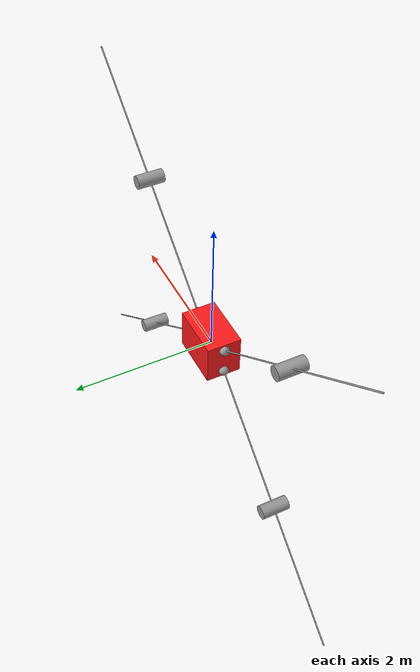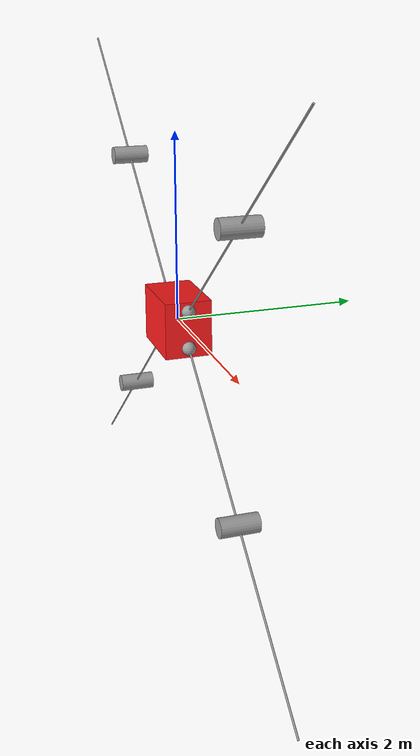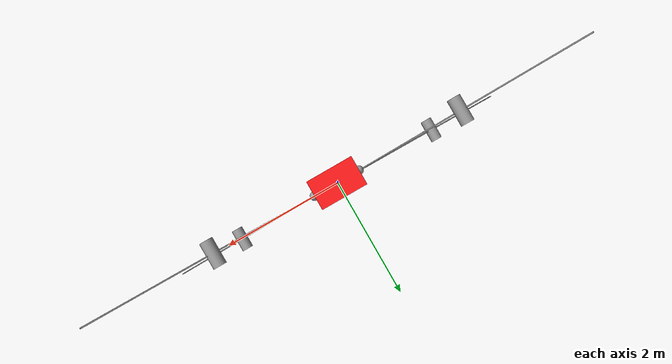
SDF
<?xml version='1.0'?>
<sdf version='1.7'>
  <model name='Wallbot_V3_Robot'>
    <link name='link_0'>
      <inertial>
        <mass>1</mass>
        <inertia>
          <ixx>0.166667</ixx>
          <ixy>0</ixy>
          <ixz>0</ixz>
          <iyy>0.166667</iyy>
          <iyz>0</iyz>
          <izz>0.166667</izz>
        </inertia>
        <pose>0 0 0 0 -0 0</pose>
      </inertial>
      <pose>0.015 0 0.005 0 -0 0</pose>
      <gravity>0</gravity>
      <self_collide>0</self_collide>
      <kinematic>0</kinematic>
      <enable_wind>0</enable_wind>
      <visual name='visual'>
        <pose>0 0 0 0 -0 0</pose>
        <geometry>
          <box>
            <size>0.8 0.5 0.6</size>
          </box>
        </geometry>
        <material>
          <lighting>1</lighting>
          <script>
            <uri>file://media/materials/scripts/gazebo.material</uri>
            <name>Gazebo/Grey</name>
          </script>
          <shader type='pixel'>
            <normal_map>__default__</normal_map>
          </shader>
          <ambient>1 0.1 0.1 1</ambient>
          <diffuse>0.7 0.7 0.7 1</diffuse>
          <specular>0.01 0.01 0.01 1</specular>
          <emissive>0 0 0 1</emissive>
        </material>
        <transparency>0</transparency>
        <cast_shadows>1</cast_shadows>
      </visual>
      <collision name='collision'>
        <laser_retro>0</laser_retro>
        <max_contacts>10</max_contacts>
        <pose>0 0 0 0 -0 0</pose>
        <geometry>
          <box>
            <size>0.8 0.5 0.6</size>
          </box>
        </geometry>
        <surface>
          <friction>
            <ode>
              <mu>1</mu>
              <mu2>1</mu2>
              <fdir1>0 0 0</fdir1>
              <slip1>0</slip1>
              <slip2>0</slip2>
            </ode>
            <torsional>
              <coefficient>1</coefficient>
              <patch_radius>0</patch_radius>
              <surface_radius>0</surface_radius>
              <use_patch_radius>1</use_patch_radius>
              <ode>
                <slip>0</slip>
              </ode>
            </torsional>
          </friction>
          <bounce>
            <restitution_coefficient>0</restitution_coefficient>
            <threshold>1e+06</threshold>
          </bounce>
          <contact>
            <collide_without_contact>0</collide_without_contact>
            <collide_without_contact_bitmask>1</collide_without_contact_bitmask>
            <collide_bitmask>1</collide_bitmask>
            <ode>
              <soft_cfm>0</soft_cfm>
              <soft_erp>0.2</soft_erp>
              <kp>1e+13</kp>
              <kd>1</kd>
              <max_vel>0.01</max_vel>
              <min_depth>0</min_depth>
            </ode>
            <bullet>
              <split_impulse>1</split_impulse>
              <split_impulse_penetration_threshold>-0.01</split_impulse_penetration_threshold>
              <soft_cfm>0</soft_cfm>
              <soft_erp>0.2</soft_erp>
              <kp>1e+13</kp>
              <kd>1</kd>
            </bullet>
          </contact>
        </surface>
      </collision>
    </link>
    <link name='link_0_0'>
      <inertial>
        <mass>1</mass>
        <inertia>
          <ixx>0.145833</ixx>
          <ixy>0</ixy>
          <ixz>0</ixz>
          <iyy>0.145833</iyy>
          <iyz>0</iyz>
          <izz>0.125</izz>
        </inertia>
        <pose>0 0 -2 0 -0 0</pose>
      </inertial>
      <pose>0.415 0 0.205 3.14159 -0.901593 3.14159</pose>
      <gravity>0</gravity>
      <self_collide>0</self_collide>
      <kinematic>0</kinematic>
      <enable_wind>0</enable_wind>
      <visual name='visual'>
        <pose>0 0 -2 0 -0 0</pose>
        <geometry>
          <cylinder>
            <radius>0.01</radius>
            <length>4</length>
          </cylinder>
        </geometry>
        <material>
          <lighting>1</lighting>
          <script>
            <uri>file://media/materials/scripts/gazebo.material</uri>
            <name>Gazebo/Grey</name>
          </script>
          <shader type='pixel'>
            <normal_map>__default__</normal_map>
          </shader>
          <ambient>0.3 0.3 0.3 1</ambient>
          <diffuse>0.7 0.7 0.7 1</diffuse>
          <specular>0.01 0.01 0.01 1</specular>
          <emissive>0 0 0 1</emissive>
        </material>
        <transparency>0</transparency>
        <cast_shadows>1</cast_shadows>
      </visual>
      <collision name='collision'>
        <laser_retro>0</laser_retro>
        <max_contacts>10</max_contacts>
        <pose>0 0 -2 0 -0 0</pose>
        <geometry>
          <cylinder>
            <radius>0.01</radius>
            <length>4</length>
          </cylinder>
        </geometry>
        <surface>
          <friction>
            <ode>
              <mu>1</mu>
              <mu2>1</mu2>
              <fdir1>0 0 0</fdir1>
              <slip1>0</slip1>
              <slip2>0</slip2>
            </ode>
            <torsional>
              <coefficient>1</coefficient>
              <patch_radius>0</patch_radius>
              <surface_radius>0</surface_radius>
              <use_patch_radius>1</use_patch_radius>
              <ode>
                <slip>0</slip>
              </ode>
            </torsional>
          </friction>
          <bounce>
            <restitution_coefficient>0</restitution_coefficient>
            <threshold>1e+06</threshold>
          </bounce>
          <contact>
            <collide_without_contact>0</collide_without_contact>
            <collide_without_contact_bitmask>1</collide_without_contact_bitmask>
            <collide_bitmask>1</collide_bitmask>
            <ode>
              <soft_cfm>0</soft_cfm>
              <soft_erp>0.2</soft_erp>
              <kp>1e+13</kp>
              <kd>1</kd>
              <max_vel>0.01</max_vel>
              <min_depth>0</min_depth>
            </ode>
            <bullet>
              <split_impulse>1</split_impulse>
              <split_impulse_penetration_threshold>-0.01</split_impulse_penetration_threshold>
              <soft_cfm>0</soft_cfm>
              <soft_erp>0.2</soft_erp>
              <kp>1e+13</kp>
              <kd>1</kd>
            </bullet>
          </contact>
        </surface>
      </collision>
    </link>
    <link name='link_0_0_clone'>
      <inertial>
        <mass>1</mass>
        <inertia>
          <ixx>0.145833</ixx>
          <ixy>0</ixy>
          <ixz>0</ixz>
          <iyy>0.145833</iyy>
          <iyz>0</iyz>
          <izz>0.125</izz>
        </inertia>
        <pose>0 0 -2 0 -0 0</pose>
      </inertial>
      <pose>-0.385 0 0.205 -3.14159 0.9 -3.14159</pose>
      <gravity>0</gravity>
      <self_collide>0</self_collide>
      <kinematic>0</kinematic>
      <enable_wind>0</enable_wind>
      <visual name='visual_0'>
        <pose>0 0 -2 0 -0 0</pose>
        <geometry>
          <cylinder>
            <radius>0.01</radius>
            <length>4</length>
          </cylinder>
        </geometry>
        <material>
          <lighting>1</lighting>
          <script>
            <uri>file://media/materials/scripts/gazebo.material</uri>
            <name>Gazebo/Grey</name>
          </script>
          <shader type='pixel'>
            <normal_map>__default__</normal_map>
          </shader>
          <ambient>0.3 0.3 0.3 1</ambient>
          <diffuse>0.7 0.7 0.7 1</diffuse>
          <specular>0.01 0.01 0.01 1</specular>
          <emissive>0 0 0 1</emissive>
        </material>
        <transparency>0</transparency>
        <cast_shadows>1</cast_shadows>
      </visual>
      <collision name='collision'>
        <laser_retro>0</laser_retro>
        <max_contacts>10</max_contacts>
        <pose>0 0 -2 0 -0 0</pose>
        <geometry>
          <cylinder>
            <radius>0.01</radius>
            <length>4</length>
          </cylinder>
        </geometry>
        <surface>
          <friction>
            <ode>
              <mu>1</mu>
              <mu2>1</mu2>
              <fdir1>0 0 0</fdir1>
              <slip1>0</slip1>
              <slip2>0</slip2>
            </ode>
            <torsional>
              <coefficient>1</coefficient>
              <patch_radius>0</patch_radius>
              <surface_radius>0</surface_radius>
              <use_patch_radius>1</use_patch_radius>
              <ode>
                <slip>0</slip>
              </ode>
            </torsional>
          </friction>
          <bounce>
            <restitution_coefficient>0</restitution_coefficient>
            <threshold>1e+06</threshold>
          </bounce>
          <contact>
            <collide_without_contact>0</collide_without_contact>
            <collide_without_contact_bitmask>1</collide_without_contact_bitmask>
            <collide_bitmask>1</collide_bitmask>
            <ode>
              <soft_cfm>0</soft_cfm>
              <soft_erp>0.2</soft_erp>
              <kp>1e+13</kp>
              <kd>1</kd>
              <max_vel>0.01</max_vel>
              <min_depth>0</min_depth>
            </ode>
            <bullet>
              <split_impulse>1</split_impulse>
              <split_impulse_penetration_threshold>-0.01</split_impulse_penetration_threshold>
              <soft_cfm>0</soft_cfm>
              <soft_erp>0.2</soft_erp>
              <kp>1e+13</kp>
              <kd>1</kd>
            </bullet>
          </contact>
        </surface>
      </collision>
    </link>
    <link name='link_0_0_clone_0'>
      <inertial>
        <mass>1</mass>
        <inertia>
          <ixx>0.145833</ixx>
          <ixy>0</ixy>
          <ixz>0</ixz>
          <iyy>0.145833</iyy>
          <iyz>0</iyz>
          <izz>0.125</izz>
        </inertia>
        <pose>0 0 -2 0 -0 0</pose>
      </inertial>
      <pose>0.415 0 -0.195 1.1e-05 -0.9 -5e-06</pose>
      <gravity>0</gravity>
      <self_collide>0</self_collide>
      <kinematic>0</kinematic>
      <enable_wind>0</enable_wind>
      <visual name='visual_0'>
        <pose>0 0 -2 0 -0 0</pose>
        <geometry>
          <cylinder>
            <radius>0.01</radius>
            <length>4</length>
          </cylinder>
        </geometry>
        <material>
          <lighting>1</lighting>
          <script>
            <uri>file://media/materials/scripts/gazebo.material</uri>
            <name>Gazebo/Grey</name>
          </script>
          <shader type='pixel'>
            <normal_map>__default__</normal_map>
          </shader>
          <ambient>0.3 0.3 0.3 1</ambient>
          <diffuse>0.7 0.7 0.7 1</diffuse>
          <specular>0.01 0.01 0.01 1</specular>
          <emissive>0 0 0 1</emissive>
        </material>
        <transparency>0</transparency>
        <cast_shadows>1</cast_shadows>
      </visual>
      <collision name='collision'>
        <laser_retro>0</laser_retro>
        <max_contacts>10</max_contacts>
        <pose>0 0 -2 0 -0 0</pose>
        <geometry>
          <cylinder>
            <radius>0.01</radius>
            <length>4</length>
          </cylinder>
        </geometry>
        <surface>
          <friction>
            <ode>
              <mu>1</mu>
              <mu2>1</mu2>
              <fdir1>0 0 0</fdir1>
              <slip1>0</slip1>
              <slip2>0</slip2>
            </ode>
            <torsional>
              <coefficient>1</coefficient>
              <patch_radius>0</patch_radius>
              <surface_radius>0</surface_radius>
              <use_patch_radius>1</use_patch_radius>
              <ode>
                <slip>0</slip>
              </ode>
            </torsional>
          </friction>
          <bounce>
            <restitution_coefficient>0</restitution_coefficient>
            <threshold>1e+06</threshold>
          </bounce>
          <contact>
            <collide_without_contact>0</collide_without_contact>
            <collide_without_contact_bitmask>1</collide_without_contact_bitmask>
            <collide_bitmask>1</collide_bitmask>
            <ode>
              <soft_cfm>0</soft_cfm>
              <soft_erp>0.2</soft_erp>
              <kp>1e+13</kp>
              <kd>1</kd>
              <max_vel>0.01</max_vel>
              <min_depth>0</min_depth>
            </ode>
            <bullet>
              <split_impulse>1</split_impulse>
              <split_impulse_penetration_threshold>-0.01</split_impulse_penetration_threshold>
              <soft_cfm>0</soft_cfm>
              <soft_erp>0.2</soft_erp>
              <kp>1e+13</kp>
              <kd>1</kd>
            </bullet>
          </contact>
        </surface>
      </collision>
    </link>
    <link name='link_0_0_clone_1'>
      <inertial>
        <mass>1</mass>
        <inertia>
          <ixx>0.145833</ixx>
          <ixy>0</ixy>
          <ixz>0</ixz>
          <iyy>0.145833</iyy>
          <iyz>0</iyz>
          <izz>0.125</izz>
        </inertia>
        <pose>0 0 -2 0 -0 0</pose>
      </inertial>
      <pose>-0.385 0 -0.195 1.1e-05 0.9 -5e-06</pose>
      <gravity>0</gravity>
      <self_collide>0</self_collide>
      <kinematic>0</kinematic>
      <enable_wind>0</enable_wind>
      <visual name='visual_0'>
        <pose>0 0 -2 0 -0 0</pose>
        <geometry>
          <cylinder>
            <radius>0.01</radius>
            <length>4</length>
          </cylinder>
        </geometry>
        <material>
          <lighting>1</lighting>
          <script>
            <uri>file://media/materials/scripts/gazebo.material</uri>
            <name>Gazebo/Grey</name>
          </script>
          <shader type='pixel'>
            <normal_map>__default__</normal_map>
          </shader>
          <ambient>0.3 0.3 0.3 1</ambient>
          <diffuse>0.7 0.7 0.7 1</diffuse>
          <specular>0.01 0.01 0.01 1</specular>
          <emissive>0 0 0 1</emissive>
        </material>
        <transparency>0</transparency>
        <cast_shadows>1</cast_shadows>
      </visual>
      <collision name='collision'>
        <laser_retro>0</laser_retro>
        <max_contacts>10</max_contacts>
        <pose>0 0 -2 0 -0 0</pose>
        <geometry>
          <cylinder>
            <radius>0.01</radius>
            <length>4</length>
          </cylinder>
        </geometry>
        <surface>
          <friction>
            <ode>
              <mu>1</mu>
              <mu2>1</mu2>
              <fdir1>0 0 0</fdir1>
              <slip1>0</slip1>
              <slip2>0</slip2>
            </ode>
            <torsional>
              <coefficient>1</coefficient>
              <patch_radius>0</patch_radius>
              <surface_radius>0</surface_radius>
              <use_patch_radius>1</use_patch_radius>
              <ode>
                <slip>0</slip>
              </ode>
            </torsional>
          </friction>
          <bounce>
            <restitution_coefficient>0</restitution_coefficient>
            <threshold>1e+06</threshold>
          </bounce>
          <contact>
            <collide_without_contact>0</collide_without_contact>
            <collide_without_contact_bitmask>1</collide_without_contact_bitmask>
            <collide_bitmask>1</collide_bitmask>
            <ode>
              <soft_cfm>0</soft_cfm>
              <soft_erp>0.2</soft_erp>
              <kp>1e+13</kp>
              <kd>1</kd>
              <max_vel>0.01</max_vel>
              <min_depth>0</min_depth>
            </ode>
            <bullet>
              <split_impulse>1</split_impulse>
              <split_impulse_penetration_threshold>-0.01</split_impulse_penetration_threshold>
              <soft_cfm>0</soft_cfm>
              <soft_erp>0.2</soft_erp>
              <kp>1e+13</kp>
              <kd>1</kd>
            </bullet>
          </contact>
        </surface>
      </collision>
    </link>
    <link name='link_1'>
      <inertial>
        <mass>1</mass>
        <inertia>
          <ixx>0.1</ixx>
          <ixy>0</ixy>
          <ixz>0</ixz>
          <iyy>0.1</iyy>
          <iyz>0</iyz>
          <izz>0.1</izz>
        </inertia>
        <pose>0 0 0 0 -0 0</pose>
      </inertial>
      <pose>-0.385 0 0.205 0 -0 0</pose>
      <gravity>0</gravity>
      <self_collide>0</self_collide>
      <kinematic>0</kinematic>
      <enable_wind>0</enable_wind>
      <visual name='visual'>
        <pose>0 0 0 0 -0 0</pose>
        <geometry>
          <sphere>
            <radius>0.075</radius>
          </sphere>
        </geometry>
        <material>
          <lighting>1</lighting>
          <script>
            <uri>file://media/materials/scripts/gazebo.material</uri>
            <name>Gazebo/Grey</name>
          </script>
          <shader type='pixel'>
            <normal_map>__default__</normal_map>
          </shader>
          <ambient>0.3 0.3 0.3 1</ambient>
          <diffuse>0.7 0.7 0.7 1</diffuse>
          <specular>0.01 0.01 0.01 1</specular>
          <emissive>0 0 0 1</emissive>
        </material>
        <transparency>0</transparency>
        <cast_shadows>1</cast_shadows>
      </visual>
      <collision name='collision'>
        <laser_retro>0</laser_retro>
        <max_contacts>10</max_contacts>
        <pose>0 0 0 0 -0 0</pose>
        <geometry>
          <sphere>
            <radius>0.075</radius>
          </sphere>
        </geometry>
        <surface>
          <friction>
            <ode>
              <mu>1</mu>
              <mu2>1</mu2>
              <fdir1>0 0 0</fdir1>
              <slip1>0</slip1>
              <slip2>0</slip2>
            </ode>
            <torsional>
              <coefficient>1</coefficient>
              <patch_radius>0</patch_radius>
              <surface_radius>0</surface_radius>
              <use_patch_radius>1</use_patch_radius>
              <ode>
                <slip>0</slip>
              </ode>
            </torsional>
          </friction>
          <bounce>
            <restitution_coefficient>0</restitution_coefficient>
            <threshold>1e+06</threshold>
          </bounce>
          <contact>
            <collide_without_contact>0</collide_without_contact>
            <collide_without_contact_bitmask>1</collide_without_contact_bitmask>
            <collide_bitmask>1</collide_bitmask>
            <ode>
              <soft_cfm>0</soft_cfm>
              <soft_erp>0.2</soft_erp>
              <kp>1e+13</kp>
              <kd>1</kd>
              <max_vel>0.01</max_vel>
              <min_depth>0</min_depth>
            </ode>
            <bullet>
              <split_impulse>1</split_impulse>
              <split_impulse_penetration_threshold>-0.01</split_impulse_penetration_threshold>
              <soft_cfm>0</soft_cfm>
              <soft_erp>0.2</soft_erp>
              <kp>1e+13</kp>
              <kd>1</kd>
            </bullet>
          </contact>
        </surface>
      </collision>
    </link>
    <link name='link_1_0'>
      <inertial>
        <mass>1</mass>
        <inertia>
          <ixx>0.1</ixx>
          <ixy>0</ixy>
          <ixz>0</ixz>
          <iyy>0.1</iyy>
          <iyz>0</iyz>
          <izz>0.1</izz>
        </inertia>
        <pose>0 0 0 0 -0 0</pose>
      </inertial>
      <pose>-1.95165 1e-06 1.44822 0 -0 0</pose>
      <gravity>0</gravity>
      <self_collide>0</self_collide>
      <kinematic>0</kinematic>
      <enable_wind>0</enable_wind>
      <visual name='visual'>
        <pose>0 0 0 0 -0 0</pose>
        <geometry>
          <sphere>
            <radius>0.01</radius>
          </sphere>
        </geometry>
        <material>
          <lighting>1</lighting>
          <script>
            <uri>file://media/materials/scripts/gazebo.material</uri>
            <name>Gazebo/Grey</name>
          </script>
          <shader type='pixel'>
            <normal_map>__default__</normal_map>
          </shader>
          <ambient>0.3 0.3 0.3 1</ambient>
          <diffuse>0.7 0.7 0.7 1</diffuse>
          <specular>0.01 0.01 0.01 1</specular>
          <emissive>0 0 0 1</emissive>
        </material>
        <transparency>0</transparency>
        <cast_shadows>1</cast_shadows>
      </visual>
      <collision name='collision'>
        <laser_retro>0</laser_retro>
        <max_contacts>10</max_contacts>
        <pose>0 0 0 0 -0 0</pose>
        <geometry>
          <sphere>
            <radius>0.01</radius>
          </sphere>
        </geometry>
        <surface>
          <friction>
            <ode>
              <mu>1</mu>
              <mu2>1</mu2>
              <fdir1>0 0 0</fdir1>
              <slip1>0</slip1>
              <slip2>0</slip2>
            </ode>
            <torsional>
              <coefficient>1</coefficient>
              <patch_radius>0</patch_radius>
              <surface_radius>0</surface_radius>
              <use_patch_radius>1</use_patch_radius>
              <ode>
                <slip>0</slip>
              </ode>
            </torsional>
          </friction>
          <bounce>
            <restitution_coefficient>0</restitution_coefficient>
            <threshold>1e+06</threshold>
          </bounce>
          <contact>
            <collide_without_contact>0</collide_without_contact>
            <collide_without_contact_bitmask>1</collide_without_contact_bitmask>
            <collide_bitmask>1</collide_bitmask>
            <ode>
              <soft_cfm>0</soft_cfm>
              <soft_erp>0.2</soft_erp>
              <kp>1e+13</kp>
              <kd>1</kd>
              <max_vel>0.01</max_vel>
              <min_depth>0</min_depth>
            </ode>
            <bullet>
              <split_impulse>1</split_impulse>
              <split_impulse_penetration_threshold>-0.01</split_impulse_penetration_threshold>
              <soft_cfm>0</soft_cfm>
              <soft_erp>0.2</soft_erp>
              <kp>1e+13</kp>
              <kd>1</kd>
            </bullet>
          </contact>
        </surface>
      </collision>
    </link>
    <link name='link_1_0_clone'>
      <inertial>
        <mass>1</mass>
        <inertia>
          <ixx>0.1</ixx>
          <ixy>0</ixy>
          <ixz>0</ixz>
          <iyy>0.1</iyy>
          <iyz>0</iyz>
          <izz>0.1</izz>
        </inertia>
        <pose>0 0 0 0 -0 0</pose>
      </inertial>
      <pose>1.98363 -1e-05 1.44572 0 -0 0</pose>
      <gravity>0</gravity>
      <self_collide>0</self_collide>
      <kinematic>0</kinematic>
      <enable_wind>0</enable_wind>
      <visual name='visual'>
        <pose>0 0 0 0 -0 0</pose>
        <geometry>
          <sphere>
            <radius>0.01</radius>
          </sphere>
        </geometry>
        <material>
          <lighting>1</lighting>
          <script>
            <uri>file://media/materials/scripts/gazebo.material</uri>
            <name>Gazebo/Grey</name>
          </script>
          <shader type='pixel'>
            <normal_map>__default__</normal_map>
          </shader>
          <ambient>0.3 0.3 0.3 1</ambient>
          <diffuse>0.7 0.7 0.7 1</diffuse>
          <specular>0.01 0.01 0.01 1</specular>
          <emissive>0 0 0 1</emissive>
        </material>
        <transparency>0</transparency>
        <cast_shadows>1</cast_shadows>
      </visual>
      <collision name='collision'>
        <laser_retro>0</laser_retro>
        <max_contacts>10</max_contacts>
        <pose>0 0 0 0 -0 0</pose>
        <geometry>
          <sphere>
            <radius>0.01</radius>
          </sphere>
        </geometry>
        <surface>
          <friction>
            <ode>
              <mu>1</mu>
              <mu2>1</mu2>
              <fdir1>0 0 0</fdir1>
              <slip1>0</slip1>
              <slip2>0</slip2>
            </ode>
            <torsional>
              <coefficient>1</coefficient>
              <patch_radius>0</patch_radius>
              <surface_radius>0</surface_radius>
              <use_patch_radius>1</use_patch_radius>
              <ode>
                <slip>0</slip>
              </ode>
            </torsional>
          </friction>
          <bounce>
            <restitution_coefficient>0</restitution_coefficient>
            <threshold>1e+06</threshold>
          </bounce>
          <contact>
            <collide_without_contact>0</collide_without_contact>
            <collide_without_contact_bitmask>1</collide_without_contact_bitmask>
            <collide_bitmask>1</collide_bitmask>
            <ode>
              <soft_cfm>0</soft_cfm>
              <soft_erp>0.2</soft_erp>
              <kp>1e+13</kp>
              <kd>1</kd>
              <max_vel>0.01</max_vel>
              <min_depth>0</min_depth>
            </ode>
            <bullet>
              <split_impulse>1</split_impulse>
              <split_impulse_penetration_threshold>-0.01</split_impulse_penetration_threshold>
              <soft_cfm>0</soft_cfm>
              <soft_erp>0.2</soft_erp>
              <kp>1e+13</kp>
              <kd>1</kd>
            </bullet>
          </contact>
        </surface>
      </collision>
    </link>
    <link name='link_1_0_clone_0'>
      <inertial>
        <mass>1</mass>
        <inertia>
          <ixx>0.1</ixx>
          <ixy>0</ixy>
          <ixz>0</ixz>
          <iyy>0.1</iyy>
          <iyz>0</iyz>
          <izz>0.1</izz>
        </inertia>
        <pose>0 0 0 0 -0 0</pose>
      </inertial>
      <pose>1.98165 1.4e-05 -1.43822 1.1e-05 -0.9 -5e-06</pose>
      <gravity>0</gravity>
      <self_collide>0</self_collide>
      <kinematic>0</kinematic>
      <enable_wind>0</enable_wind>
      <visual name='visual'>
        <pose>0 0 0 0 -0 0</pose>
        <geometry>
          <sphere>
            <radius>0.01</radius>
          </sphere>
        </geometry>
        <material>
          <lighting>1</lighting>
          <script>
            <uri>file://media/materials/scripts/gazebo.material</uri>
            <name>Gazebo/Grey</name>
          </script>
          <shader type='pixel'>
            <normal_map>__default__</normal_map>
          </shader>
          <ambient>0.3 0.3 0.3 1</ambient>
          <diffuse>0.7 0.7 0.7 1</diffuse>
          <specular>0.01 0.01 0.01 1</specular>
          <emissive>0 0 0 1</emissive>
        </material>
        <transparency>0</transparency>
        <cast_shadows>1</cast_shadows>
      </visual>
      <collision name='collision'>
        <laser_retro>0</laser_retro>
        <max_contacts>10</max_contacts>
        <pose>0 0 0 0 -0 0</pose>
        <geometry>
          <sphere>
            <radius>0.01</radius>
          </sphere>
        </geometry>
        <surface>
          <friction>
            <ode>
              <mu>1</mu>
              <mu2>1</mu2>
              <fdir1>0 0 0</fdir1>
              <slip1>0</slip1>
              <slip2>0</slip2>
            </ode>
            <torsional>
              <coefficient>1</coefficient>
              <patch_radius>0</patch_radius>
              <surface_radius>0</surface_radius>
              <use_patch_radius>1</use_patch_radius>
              <ode>
                <slip>0</slip>
              </ode>
            </torsional>
          </friction>
          <bounce>
            <restitution_coefficient>0</restitution_coefficient>
            <threshold>1e+06</threshold>
          </bounce>
          <contact>
            <collide_without_contact>0</collide_without_contact>
            <collide_without_contact_bitmask>1</collide_without_contact_bitmask>
            <collide_bitmask>1</collide_bitmask>
            <ode>
              <soft_cfm>0</soft_cfm>
              <soft_erp>0.2</soft_erp>
              <kp>1e+13</kp>
              <kd>1</kd>
              <max_vel>0.01</max_vel>
              <min_depth>0</min_depth>
            </ode>
            <bullet>
              <split_impulse>1</split_impulse>
              <split_impulse_penetration_threshold>-0.01</split_impulse_penetration_threshold>
              <soft_cfm>0</soft_cfm>
              <soft_erp>0.2</soft_erp>
              <kp>1e+13</kp>
              <kd>1</kd>
            </bullet>
          </contact>
        </surface>
      </collision>
    </link>
    <link name='link_1_0_clone_1'>
      <inertial>
        <mass>1</mass>
        <inertia>
          <ixx>0.1</ixx>
          <ixy>0</ixy>
          <ixz>0</ixz>
          <iyy>0.1</iyy>
          <iyz>0</iyz>
          <izz>0.1</izz>
        </inertia>
        <pose>0 0 0 0 -0 0</pose>
      </inertial>
      <pose>-1.95165 3e-05 -1.43822 1.1e-05 0.9 -5e-06</pose>
      <gravity>0</gravity>
      <self_collide>0</self_collide>
      <kinematic>0</kinematic>
      <enable_wind>0</enable_wind>
      <visual name='visual'>
        <pose>0 0 0 0 -0 0</pose>
        <geometry>
          <sphere>
            <radius>0.01</radius>
          </sphere>
        </geometry>
        <material>
          <lighting>1</lighting>
          <script>
            <uri>file://media/materials/scripts/gazebo.material</uri>
            <name>Gazebo/Grey</name>
          </script>
          <shader type='pixel'>
            <normal_map>__default__</normal_map>
          </shader>
          <ambient>0.3 0.3 0.3 1</ambient>
          <diffuse>0.7 0.7 0.7 1</diffuse>
          <specular>0.01 0.01 0.01 1</specular>
          <emissive>0 0 0 1</emissive>
        </material>
        <transparency>0</transparency>
        <cast_shadows>1</cast_shadows>
      </visual>
      <collision name='collision'>
        <laser_retro>0</laser_retro>
        <max_contacts>10</max_contacts>
        <pose>0 0 0 0 -0 0</pose>
        <geometry>
          <sphere>
            <radius>0.01</radius>
          </sphere>
        </geometry>
        <surface>
          <friction>
            <ode>
              <mu>1</mu>
              <mu2>1</mu2>
              <fdir1>0 0 0</fdir1>
              <slip1>0</slip1>
              <slip2>0</slip2>
            </ode>
            <torsional>
              <coefficient>1</coefficient>
              <patch_radius>0</patch_radius>
              <surface_radius>0</surface_radius>
              <use_patch_radius>1</use_patch_radius>
              <ode>
                <slip>0</slip>
              </ode>
            </torsional>
          </friction>
          <bounce>
            <restitution_coefficient>0</restitution_coefficient>
            <threshold>1e+06</threshold>
          </bounce>
          <contact>
            <collide_without_contact>0</collide_without_contact>
            <collide_without_contact_bitmask>1</collide_without_contact_bitmask>
            <collide_bitmask>1</collide_bitmask>
            <ode>
              <soft_cfm>0</soft_cfm>
              <soft_erp>0.2</soft_erp>
              <kp>1e+13</kp>
              <kd>1</kd>
              <max_vel>0.01</max_vel>
              <min_depth>0</min_depth>
            </ode>
            <bullet>
              <split_impulse>1</split_impulse>
              <split_impulse_penetration_threshold>-0.01</split_impulse_penetration_threshold>
              <soft_cfm>0</soft_cfm>
              <soft_erp>0.2</soft_erp>
              <kp>1e+13</kp>
              <kd>1</kd>
            </bullet>
          </contact>
        </surface>
      </collision>
    </link>
    <link name='link_1_clone'>
      <inertial>
        <mass>1</mass>
        <inertia>
          <ixx>0.1</ixx>
          <ixy>0</ixy>
          <ixz>0</ixz>
          <iyy>0.1</iyy>
          <iyz>0</iyz>
          <izz>0.1</izz>
        </inertia>
        <pose>0 0 0 0 -0 0</pose>
      </inertial>
      <pose>0.415 0 0.205 0 -0 0</pose>
      <gravity>0</gravity>
      <self_collide>0</self_collide>
      <kinematic>0</kinematic>
      <enable_wind>0</enable_wind>
      <visual name='visual'>
        <pose>0 0 0 0 -0 0</pose>
        <geometry>
          <sphere>
            <radius>0.075</radius>
          </sphere>
        </geometry>
        <material>
          <lighting>1</lighting>
          <script>
            <uri>file://media/materials/scripts/gazebo.material</uri>
            <name>Gazebo/Grey</name>
          </script>
          <shader type='pixel'>
            <normal_map>__default__</normal_map>
          </shader>
          <ambient>0.3 0.3 0.3 1</ambient>
          <diffuse>0.7 0.7 0.7 1</diffuse>
          <specular>0.01 0.01 0.01 1</specular>
          <emissive>0 0 0 1</emissive>
        </material>
        <transparency>0</transparency>
        <cast_shadows>1</cast_shadows>
      </visual>
      <collision name='collision'>
        <laser_retro>0</laser_retro>
        <max_contacts>10</max_contacts>
        <pose>0 0 0 0 -0 0</pose>
        <geometry>
          <sphere>
            <radius>0.075</radius>
          </sphere>
        </geometry>
        <surface>
          <friction>
            <ode>
              <mu>1</mu>
              <mu2>1</mu2>
              <fdir1>0 0 0</fdir1>
              <slip1>0</slip1>
              <slip2>0</slip2>
            </ode>
            <torsional>
              <coefficient>1</coefficient>
              <patch_radius>0</patch_radius>
              <surface_radius>0</surface_radius>
              <use_patch_radius>1</use_patch_radius>
              <ode>
                <slip>0</slip>
              </ode>
            </torsional>
          </friction>
          <bounce>
            <restitution_coefficient>0</restitution_coefficient>
            <threshold>1e+06</threshold>
          </bounce>
          <contact>
            <collide_without_contact>0</collide_without_contact>
            <collide_without_contact_bitmask>1</collide_without_contact_bitmask>
            <collide_bitmask>1</collide_bitmask>
            <ode>
              <soft_cfm>0</soft_cfm>
              <soft_erp>0.2</soft_erp>
              <kp>1e+13</kp>
              <kd>1</kd>
              <max_vel>0.01</max_vel>
              <min_depth>0</min_depth>
            </ode>
            <bullet>
              <split_impulse>1</split_impulse>
              <split_impulse_penetration_threshold>-0.01</split_impulse_penetration_threshold>
              <soft_cfm>0</soft_cfm>
              <soft_erp>0.2</soft_erp>
              <kp>1e+13</kp>
              <kd>1</kd>
            </bullet>
          </contact>
        </surface>
      </collision>
    </link>
    <link name='link_1_clone_0'>
      <inertial>
        <mass>1</mass>
        <inertia>
          <ixx>0.1</ixx>
          <ixy>0</ixy>
          <ixz>0</ixz>
          <iyy>0.1</iyy>
          <iyz>0</iyz>
          <izz>0.1</izz>
        </inertia>
        <pose>0 0 0 0 -0 0</pose>
      </inertial>
      <pose>0.415 0 -0.195 0 -0 0</pose>
      <gravity>0</gravity>
      <self_collide>0</self_collide>
      <kinematic>0</kinematic>
      <enable_wind>0</enable_wind>
      <visual name='visual'>
        <pose>0 0 0 0 -0 0</pose>
        <geometry>
          <sphere>
            <radius>0.075</radius>
          </sphere>
        </geometry>
        <material>
          <lighting>1</lighting>
          <script>
            <uri>file://media/materials/scripts/gazebo.material</uri>
            <name>Gazebo/Grey</name>
          </script>
          <shader type='pixel'>
            <normal_map>__default__</normal_map>
          </shader>
          <ambient>0.3 0.3 0.3 1</ambient>
          <diffuse>0.7 0.7 0.7 1</diffuse>
          <specular>0.01 0.01 0.01 1</specular>
          <emissive>0 0 0 1</emissive>
        </material>
        <transparency>0</transparency>
        <cast_shadows>1</cast_shadows>
      </visual>
      <collision name='collision'>
        <laser_retro>0</laser_retro>
        <max_contacts>10</max_contacts>
        <pose>0 0 0 0 -0 0</pose>
        <geometry>
          <sphere>
            <radius>0.075</radius>
          </sphere>
        </geometry>
        <surface>
          <friction>
            <ode>
              <mu>1</mu>
              <mu2>1</mu2>
              <fdir1>0 0 0</fdir1>
              <slip1>0</slip1>
              <slip2>0</slip2>
            </ode>
            <torsional>
              <coefficient>1</coefficient>
              <patch_radius>0</patch_radius>
              <surface_radius>0</surface_radius>
              <use_patch_radius>1</use_patch_radius>
              <ode>
                <slip>0</slip>
              </ode>
            </torsional>
          </friction>
          <bounce>
            <restitution_coefficient>0</restitution_coefficient>
            <threshold>1e+06</threshold>
          </bounce>
          <contact>
            <collide_without_contact>0</collide_without_contact>
            <collide_without_contact_bitmask>1</collide_without_contact_bitmask>
            <collide_bitmask>1</collide_bitmask>
            <ode>
              <soft_cfm>0</soft_cfm>
              <soft_erp>0.2</soft_erp>
              <kp>1e+13</kp>
              <kd>1</kd>
              <max_vel>0.01</max_vel>
              <min_depth>0</min_depth>
            </ode>
            <bullet>
              <split_impulse>1</split_impulse>
              <split_impulse_penetration_threshold>-0.01</split_impulse_penetration_threshold>
              <soft_cfm>0</soft_cfm>
              <soft_erp>0.2</soft_erp>
              <kp>1e+13</kp>
              <kd>1</kd>
            </bullet>
          </contact>
        </surface>
      </collision>
    </link>
    <link name='link_1_clone_1'>
      <inertial>
        <mass>1</mass>
        <inertia>
          <ixx>0.1</ixx>
          <ixy>0</ixy>
          <ixz>0</ixz>
          <iyy>0.1</iyy>
          <iyz>0</iyz>
          <izz>0.1</izz>
        </inertia>
        <pose>0 0 0 0 -0 0</pose>
      </inertial>
      <pose>-0.385 0 -0.195 0 -0 0</pose>
      <gravity>0</gravity>
      <self_collide>0</self_collide>
      <kinematic>0</kinematic>
      <enable_wind>0</enable_wind>
      <visual name='visual'>
        <pose>0 0 0 0 -0 0</pose>
        <geometry>
          <sphere>
            <radius>0.075</radius>
          </sphere>
        </geometry>
        <material>
          <lighting>1</lighting>
          <script>
            <uri>file://media/materials/scripts/gazebo.material</uri>
            <name>Gazebo/Grey</name>
          </script>
          <shader type='pixel'>
            <normal_map>__default__</normal_map>
          </shader>
          <ambient>0.3 0.3 0.3 1</ambient>
          <diffuse>0.7 0.7 0.7 1</diffuse>
          <specular>0.01 0.01 0.01 1</specular>
          <emissive>0 0 0 1</emissive>
        </material>
        <transparency>0</transparency>
        <cast_shadows>1</cast_shadows>
      </visual>
      <collision name='collision'>
        <laser_retro>0</laser_retro>
        <max_contacts>10</max_contacts>
        <pose>0 0 0 0 -0 0</pose>
        <geometry>
          <sphere>
            <radius>0.075</radius>
          </sphere>
        </geometry>
        <surface>
          <friction>
            <ode>
              <mu>1</mu>
              <mu2>1</mu2>
              <fdir1>0 0 0</fdir1>
              <slip1>0</slip1>
              <slip2>0</slip2>
            </ode>
            <torsional>
              <coefficient>1</coefficient>
              <patch_radius>0</patch_radius>
              <surface_radius>0</surface_radius>
              <use_patch_radius>1</use_patch_radius>
              <ode>
                <slip>0</slip>
              </ode>
            </torsional>
          </friction>
          <bounce>
            <restitution_coefficient>0</restitution_coefficient>
            <threshold>1e+06</threshold>
          </bounce>
          <contact>
            <collide_without_contact>0</collide_without_contact>
            <collide_without_contact_bitmask>1</collide_without_contact_bitmask>
            <collide_bitmask>1</collide_bitmask>
            <ode>
              <soft_cfm>0</soft_cfm>
              <soft_erp>0.2</soft_erp>
              <kp>1e+13</kp>
              <kd>1</kd>
              <max_vel>0.01</max_vel>
              <min_depth>0</min_depth>
            </ode>
            <bullet>
              <split_impulse>1</split_impulse>
              <split_impulse_penetration_threshold>-0.01</split_impulse_penetration_threshold>
              <soft_cfm>0</soft_cfm>
              <soft_erp>0.2</soft_erp>
              <kp>1e+13</kp>
              <kd>1</kd>
            </bullet>
          </contact>
        </surface>
      </collision>
    </link>
    <link name='link_3'>
      <inertial>
        <mass>1</mass>
        <inertia>
          <ixx>0.145833</ixx>
          <ixy>0</ixy>
          <ixz>0</ixz>
          <iyy>0.145833</iyy>
          <iyz>0</iyz>
          <izz>0.125</izz>
        </inertia>
        <pose>0 0 0 0 -0 0</pose>
      </inertial>
      <pose>-1.95165 1e-06 1.44822 0 -0 0</pose>
      <gravity>0</gravity>
      <self_collide>0</self_collide>
      <static>1</static>
      <enable_wind>0</enable_wind>
      <visual name='visual'>
        <pose>0 0 0 1.57 -0 0</pose>
        <geometry>
          <cylinder>
            <radius>0.1</radius>
            <length>0.4</length>
          </cylinder>
        </geometry>
        <material>
          <lighting>1</lighting>
          <script>
            <uri>file://media/materials/scripts/gazebo.material</uri>
            <name>Gazebo/Grey</name>
          </script>
          <shader type='pixel'>
            <normal_map>__default__</normal_map>
          </shader>
          <ambient>0.3 0.3 0.3 1</ambient>
          <diffuse>0.7 0.7 0.7 1</diffuse>
          <specular>0.01 0.01 0.01 1</specular>
          <emissive>0 0 0 1</emissive>
        </material>
        <transparency>0</transparency>
        <cast_shadows>1</cast_shadows>
      </visual>
      <collision name='collision'>
        <laser_retro>0</laser_retro>
        <max_contacts>10</max_contacts>
        <pose>0 0 0 1.57 -0 0</pose>
        <geometry>
          <cylinder>
            <radius>0.1</radius>
            <length>0.4</length>
          </cylinder>
        </geometry>
        <surface>
          <friction>
            <ode>
              <mu>1</mu>
              <mu2>1</mu2>
              <fdir1>0 0 0</fdir1>
              <slip1>0</slip1>
              <slip2>0</slip2>
            </ode>
            <torsional>
              <coefficient>1</coefficient>
              <patch_radius>0</patch_radius>
              <surface_radius>0</surface_radius>
              <use_patch_radius>1</use_patch_radius>
              <ode>
                <slip>0</slip>
              </ode>
            </torsional>
          </friction>
          <bounce>
            <restitution_coefficient>0</restitution_coefficient>
            <threshold>1e+06</threshold>
          </bounce>
          <contact>
            <collide_without_contact>0</collide_without_contact>
            <collide_without_contact_bitmask>1</collide_without_contact_bitmask>
            <collide_bitmask>1</collide_bitmask>
            <ode>
              <soft_cfm>0</soft_cfm>
              <soft_erp>0.2</soft_erp>
              <kp>1e+13</kp>
              <kd>1</kd>
              <max_vel>0.01</max_vel>
              <min_depth>0</min_depth>
            </ode>
            <bullet>
              <split_impulse>1</split_impulse>
              <split_impulse_penetration_threshold>-0.01</split_impulse_penetration_threshold>
              <soft_cfm>0</soft_cfm>
              <soft_erp>0.2</soft_erp>
              <kp>1e+13</kp>
              <kd>1</kd>
            </bullet>
          </contact>
        </surface>
      </collision>
    </link>
    <link name='link_3_clone'>
      <inertial>
        <mass>1</mass>
        <inertia>
          <ixx>0.145833</ixx>
          <ixy>0</ixy>
          <ixz>0</ixz>
          <iyy>0.145833</iyy>
          <iyz>0</iyz>
          <izz>0.125</izz>
        </inertia>
        <pose>0 0 0 0 -0 0</pose>
      </inertial>
      <pose>1.98363 -1e-05 1.44572 0 -0 0</pose>
      <gravity>0</gravity>
      <self_collide>0</self_collide>
      <static>1</static>
      <enable_wind>0</enable_wind>
      <visual name='visual'>
        <pose>0 0 0 1.57 -0 0</pose>
        <geometry>
          <cylinder>
            <radius>0.1</radius>
            <length>0.4</length>
          </cylinder>
        </geometry>
        <material>
          <lighting>1</lighting>
          <script>
            <uri>file://media/materials/scripts/gazebo.material</uri>
            <name>Gazebo/Grey</name>
          </script>
          <shader type='pixel'>
            <normal_map>__default__</normal_map>
          </shader>
          <ambient>0.3 0.3 0.3 1</ambient>
          <diffuse>0.7 0.7 0.7 1</diffuse>
          <specular>0.01 0.01 0.01 1</specular>
          <emissive>0 0 0 1</emissive>
        </material>
        <transparency>0</transparency>
        <cast_shadows>1</cast_shadows>
      </visual>
      <collision name='collision'>
        <laser_retro>0</laser_retro>
        <max_contacts>10</max_contacts>
        <pose>0 0 0 1.57 -0 0</pose>
        <geometry>
          <cylinder>
            <radius>0.1</radius>
            <length>0.4</length>
          </cylinder>
        </geometry>
        <surface>
          <friction>
            <ode>
              <mu>1</mu>
              <mu2>1</mu2>
              <fdir1>0 0 0</fdir1>
              <slip1>0</slip1>
              <slip2>0</slip2>
            </ode>
            <torsional>
              <coefficient>1</coefficient>
              <patch_radius>0</patch_radius>
              <surface_radius>0</surface_radius>
              <use_patch_radius>1</use_patch_radius>
              <ode>
                <slip>0</slip>
              </ode>
            </torsional>
          </friction>
          <bounce>
            <restitution_coefficient>0</restitution_coefficient>
            <threshold>1e+06</threshold>
          </bounce>
          <contact>
            <collide_without_contact>0</collide_without_contact>
            <collide_without_contact_bitmask>1</collide_without_contact_bitmask>
            <collide_bitmask>1</collide_bitmask>
            <ode>
              <soft_cfm>0</soft_cfm>
              <soft_erp>0.2</soft_erp>
              <kp>1e+13</kp>
              <kd>1</kd>
              <max_vel>0.01</max_vel>
              <min_depth>0</min_depth>
            </ode>
            <bullet>
              <split_impulse>1</split_impulse>
              <split_impulse_penetration_threshold>-0.01</split_impulse_penetration_threshold>
              <soft_cfm>0</soft_cfm>
              <soft_erp>0.2</soft_erp>
              <kp>1e+13</kp>
              <kd>1</kd>
            </bullet>
          </contact>
        </surface>
      </collision>
    </link>
    <link name='link_3_clone_0'>
      <inertial>
        <mass>1</mass>
        <inertia>
          <ixx>0.145833</ixx>
          <ixy>0</ixy>
          <ixz>0</ixz>
          <iyy>0.145833</iyy>
          <iyz>0</iyz>
          <izz>0.125</izz>
        </inertia>
        <pose>0 0 0 0 -0 0</pose>
      </inertial>
      <pose>1.98165 1.4e-05 -1.43822 1.1e-05 -0.9 -5e-06</pose>
      <gravity>0</gravity>
      <self_collide>0</self_collide>
      <static>1</static>
      <enable_wind>0</enable_wind>
      <visual name='visual'>
        <pose>0 0 0 1.57 -0 0</pose>
        <geometry>
          <cylinder>
            <radius>0.1</radius>
            <length>0.4</length>
          </cylinder>
        </geometry>
        <material>
          <lighting>1</lighting>
          <script>
            <uri>file://media/materials/scripts/gazebo.material</uri>
            <name>Gazebo/Grey</name>
          </script>
          <shader type='pixel'>
            <normal_map>__default__</normal_map>
          </shader>
          <ambient>0.3 0.3 0.3 1</ambient>
          <diffuse>0.7 0.7 0.7 1</diffuse>
          <specular>0.01 0.01 0.01 1</specular>
          <emissive>0 0 0 1</emissive>
        </material>
        <transparency>0</transparency>
        <cast_shadows>1</cast_shadows>
      </visual>
      <collision name='collision'>
        <laser_retro>0</laser_retro>
        <max_contacts>10</max_contacts>
        <pose>0 0 0 1.57 -0 0</pose>
        <geometry>
          <cylinder>
            <radius>0.1</radius>
            <length>0.4</length>
          </cylinder>
        </geometry>
        <surface>
          <friction>
            <ode>
              <mu>1</mu>
              <mu2>1</mu2>
              <fdir1>0 0 0</fdir1>
              <slip1>0</slip1>
              <slip2>0</slip2>
            </ode>
            <torsional>
              <coefficient>1</coefficient>
              <patch_radius>0</patch_radius>
              <surface_radius>0</surface_radius>
              <use_patch_radius>1</use_patch_radius>
              <ode>
                <slip>0</slip>
              </ode>
            </torsional>
          </friction>
          <bounce>
            <restitution_coefficient>0</restitution_coefficient>
            <threshold>1e+06</threshold>
          </bounce>
          <contact>
            <collide_without_contact>0</collide_without_contact>
            <collide_without_contact_bitmask>1</collide_without_contact_bitmask>
            <collide_bitmask>1</collide_bitmask>
            <ode>
              <soft_cfm>0</soft_cfm>
              <soft_erp>0.2</soft_erp>
              <kp>1e+13</kp>
              <kd>1</kd>
              <max_vel>0.01</max_vel>
              <min_depth>0</min_depth>
            </ode>
            <bullet>
              <split_impulse>1</split_impulse>
              <split_impulse_penetration_threshold>-0.01</split_impulse_penetration_threshold>
              <soft_cfm>0</soft_cfm>
              <soft_erp>0.2</soft_erp>
              <kp>1e+13</kp>
              <kd>1</kd>
            </bullet>
          </contact>
        </surface>
      </collision>
    </link>
    <link name='link_3_clone_1'>
      <inertial>
        <mass>1</mass>
        <inertia>
          <ixx>0.145833</ixx>
          <ixy>0</ixy>
          <ixz>0</ixz>
          <iyy>0.145833</iyy>
          <iyz>0</iyz>
          <izz>0.125</izz>
        </inertia>
        <pose>0 0 0 0 -0 0</pose>
      </inertial>
      <pose>-1.95165 3e-05 -1.43822 1.1e-05 0.9 -5e-06</pose>
      <gravity>0</gravity>
      <self_collide>0</self_collide>
      <static>1</static>
      <enable_wind>0</enable_wind>
      <visual name='visual'>
        <pose>0 0 0 1.57 -0 0</pose>
        <geometry>
          <cylinder>
            <radius>0.1</radius>
            <length>0.4</length>
          </cylinder>
        </geometry>
        <material>
          <lighting>1</lighting>
          <script>
            <uri>file://media/materials/scripts/gazebo.material</uri>
            <name>Gazebo/Grey</name>
          </script>
          <shader type='pixel'>
            <normal_map>__default__</normal_map>
          </shader>
          <ambient>0.3 0.3 0.3 1</ambient>
          <diffuse>0.7 0.7 0.7 1</diffuse>
          <specular>0.01 0.01 0.01 1</specular>
          <emissive>0 0 0 1</emissive>
        </material>
        <transparency>0</transparency>
        <cast_shadows>1</cast_shadows>
      </visual>
      <collision name='collision'>
        <laser_retro>0</laser_retro>
        <max_contacts>10</max_contacts>
        <pose>0 0 0 1.57 -0 0</pose>
        <geometry>
          <cylinder>
            <radius>0.1</radius>
            <length>0.4</length>
          </cylinder>
        </geometry>
        <surface>
          <friction>
            <ode>
              <mu>1</mu>
              <mu2>1</mu2>
              <fdir1>0 0 0</fdir1>
              <slip1>0</slip1>
              <slip2>0</slip2>
            </ode>
            <torsional>
              <coefficient>1</coefficient>
              <patch_radius>0</patch_radius>
              <surface_radius>0</surface_radius>
              <use_patch_radius>1</use_patch_radius>
              <ode>
                <slip>0</slip>
              </ode>
            </torsional>
          </friction>
          <bounce>
            <restitution_coefficient>0</restitution_coefficient>
            <threshold>1e+06</threshold>
          </bounce>
          <contact>
            <collide_without_contact>0</collide_without_contact>
            <collide_without_contact_bitmask>1</collide_without_contact_bitmask>
            <collide_bitmask>1</collide_bitmask>
            <ode>
              <soft_cfm>0</soft_cfm>
              <soft_erp>0.2</soft_erp>
              <kp>1e+13</kp>
              <kd>1</kd>
              <max_vel>0.01</max_vel>
              <min_depth>0</min_depth>
            </ode>
            <bullet>
              <split_impulse>1</split_impulse>
              <split_impulse_penetration_threshold>-0.01</split_impulse_penetration_threshold>
              <soft_cfm>0</soft_cfm>
              <soft_erp>0.2</soft_erp>
              <kp>1e+13</kp>
              <kd>1</kd>
            </bullet>
          </contact>
        </surface>
      </collision>
    </link>
    <joint name='Prismatic Joint Bottom Left' type='prismatic'>
      <parent>link_0_0_clone_0</parent>
      <child>link_1_0_clone_0</child>
      <pose>0 0 0 0 -0 0</pose>
      <axis>
        <xyz>0 0 1</xyz>
        <limit>
          <lower>-2</lower>
          <upper>2</upper>
          <effort>-1</effort>
          <velocity>-1</velocity>
        </limit>
        <dynamics>
          <spring_reference>0</spring_reference>
          <spring_stiffness>0</spring_stiffness>
          <damping>0</damping>
          <friction>0</friction>
        </dynamics>
      </axis>
      <physics>
        <ode>
          <limit>
            <cfm>0</cfm>
            <erp>0.2</erp>
          </limit>
          <suspension>
            <cfm>0</cfm>
            <erp>0.2</erp>
          </suspension>
        </ode>
      </physics>
    </joint>
    <joint name='Prismatic Joint Bottom Right' type='prismatic'>
      <child>link_1_0_clone_1</child>
      <parent>link_0_0_clone_1</parent>
      <pose>0 0 0 0 -0 0</pose>
      <axis>
        <xyz>0 0 1</xyz>
        <limit>
          <lower>-2</lower>
          <upper>2</upper>
          <effort>-1</effort>
          <velocity>-1</velocity>
        </limit>
        <dynamics>
          <spring_reference>0</spring_reference>
          <spring_stiffness>0</spring_stiffness>
          <damping>0</damping>
          <friction>0</friction>
        </dynamics>
      </axis>
      <physics>
        <ode>
          <limit>
            <cfm>0</cfm>
            <erp>0.2</erp>
          </limit>
          <suspension>
            <cfm>0</cfm>
            <erp>0.2</erp>
          </suspension>
        </ode>
      </physics>
    </joint>
    <joint name='Prismatic Joint Top Left' type='prismatic'>
      <child>link_1_0_clone</child>
      <parent>link_0_0</parent>
      <pose>0 0 0 0 -0 0</pose>
      <axis>
        <xyz>0 0 1</xyz>
        <limit>
          <lower>-2</lower>
          <upper>2</upper>
          <effort>-1</effort>
          <velocity>-1</velocity>
        </limit>
        <dynamics>
          <spring_reference>0</spring_reference>
          <spring_stiffness>0</spring_stiffness>
          <damping>0</damping>
          <friction>0</friction>
        </dynamics>
      </axis>
      <physics>
        <ode>
          <limit>
            <cfm>0</cfm>
            <erp>0.2</erp>
          </limit>
          <suspension>
            <cfm>0</cfm>
            <erp>0.2</erp>
          </suspension>
        </ode>
      </physics>
    </joint>
    <joint name='Prismatic Joint Top Right' type='prismatic'>
      <child>link_1_0</child>
      <parent>link_0_0_clone</parent>
      <pose>0 0 0 0 -0 0</pose>
      <axis>
        <xyz>0 0 -1</xyz>
        <limit>
          <lower>-2</lower>
          <upper>2</upper>
          <effort>-1</effort>
          <velocity>-1</velocity>
        </limit>
        <dynamics>
          <spring_reference>0</spring_reference>
          <spring_stiffness>0</spring_stiffness>
          <damping>0</damping>
          <friction>0</friction>
        </dynamics>
      </axis>
      <physics>
        <ode>
          <limit>
            <cfm>0</cfm>
            <erp>0.2</erp>
          </limit>
          <suspension>
            <cfm>0</cfm>
            <erp>0.2</erp>
          </suspension>
        </ode>
      </physics>
    </joint>
    <joint name='Universal Join Bottom Left' type='universal'>
      <child>link_3_clone_0</child>
      <parent>link_1_0_clone_0</parent>
      <pose>0 0 0 0 -0 0</pose>
      <axis>
        <xyz>0 0 1</xyz>
        <limit>
          <lower>-1</lower>
          <upper>1</upper>
          <effort>-1</effort>
          <velocity>-1</velocity>
        </limit>
        <dynamics>
          <spring_reference>0</spring_reference>
          <spring_stiffness>0</spring_stiffness>
          <damping>0</damping>
          <friction>0</friction>
        </dynamics>
      </axis>
      <axis2>
        <xyz>0 1 0</xyz>
        <limit>
          <lower>-1</lower>
          <upper>1</upper>
          <effort>-1</effort>
          <velocity>-1</velocity>
        </limit>
        <dynamics>
          <spring_reference>0</spring_reference>
          <spring_stiffness>0</spring_stiffness>
          <damping>0</damping>
          <friction>0</friction>
        </dynamics>
      </axis2>
      <physics>
        <ode>
          <limit>
            <cfm>0</cfm>
            <erp>0.2</erp>
          </limit>
          <suspension>
            <cfm>0</cfm>
            <erp>0.2</erp>
          </suspension>
        </ode>
      </physics>
    </joint>
    <joint name='Universal Joint Bottom Right' type='universal'>
      <child>link_3_clone_1</child>
      <parent>link_1_0_clone_1</parent>
      <pose>0 0 0 0 -0 0</pose>
      <axis>
        <xyz>0 1 0</xyz>
        <limit>
          <lower>-1</lower>
          <upper>1</upper>
          <effort>-1</effort>
          <velocity>-1</velocity>
        </limit>
        <dynamics>
          <spring_reference>0</spring_reference>
          <spring_stiffness>0</spring_stiffness>
          <damping>0</damping>
          <friction>0</friction>
        </dynamics>
      </axis>
      <axis2>
        <xyz>0 0 1</xyz>
        <limit>
          <lower>-1</lower>
          <upper>1</upper>
          <effort>-1</effort>
          <velocity>-1</velocity>
        </limit>
        <dynamics>
          <spring_reference>0</spring_reference>
          <spring_stiffness>0</spring_stiffness>
          <damping>0</damping>
          <friction>0</friction>
        </dynamics>
      </axis2>
      <physics>
        <ode>
          <limit>
            <cfm>0</cfm>
            <erp>0.2</erp>
          </limit>
          <suspension>
            <cfm>0</cfm>
            <erp>0.2</erp>
          </suspension>
        </ode>
      </physics>
    </joint>
    <joint name='Universal Joint Top Left' type='universal'>
      <child>link_3_clone</child>
      <parent>link_1_0_clone</parent>
      <pose>0 0 0 0 -0 0</pose>
      <axis>
        <xyz>1 0 0</xyz>
        <limit>
          <lower>-1</lower>
          <upper>1</upper>
          <effort>-1</effort>
          <velocity>-1</velocity>
        </limit>
        <dynamics>
          <spring_reference>0</spring_reference>
          <spring_stiffness>0</spring_stiffness>
          <damping>0</damping>
          <friction>0</friction>
        </dynamics>
      </axis>
      <axis2>
        <xyz>0 0 1</xyz>
        <limit>
          <lower>-1e+16</lower>
          <upper>1e+16</upper>
          <effort>-1</effort>
          <velocity>-1</velocity>
        </limit>
        <dynamics>
          <spring_reference>0</spring_reference>
          <spring_stiffness>0</spring_stiffness>
          <damping>0</damping>
          <friction>0</friction>
        </dynamics>
      </axis2>
      <physics>
        <ode>
          <limit>
            <cfm>0</cfm>
            <erp>0.2</erp>
          </limit>
          <suspension>
            <cfm>0</cfm>
            <erp>0.2</erp>
          </suspension>
        </ode>
      </physics>
    </joint>
    <joint name='Universal Joint Top Right' type='universal'>
      <child>link_3</child>
      <parent>link_1_0</parent>
      <pose>0 0 0 0 -0 0</pose>
      <axis>
        <xyz>0 1 0</xyz>
        <limit>
          <lower>-1</lower>
          <upper>1</upper>
          <effort>-1</effort>
          <velocity>-1</velocity>
        </limit>
        <dynamics>
          <spring_reference>0</spring_reference>
          <spring_stiffness>0</spring_stiffness>
          <damping>0</damping>
          <friction>0</friction>
        </dynamics>
      </axis>
      <axis2>
        <xyz>0 0 1</xyz>
        <limit>
          <lower>-1</lower>
          <upper>1</upper>
          <effort>-1</effort>
          <velocity>-1</velocity>
        </limit>
        <dynamics>
          <spring_reference>0</spring_reference>
          <spring_stiffness>0</spring_stiffness>
          <damping>0</damping>
          <friction>0</friction>
        </dynamics>
      </axis2>
      <physics>
        <ode>
          <limit>
            <cfm>0</cfm>
            <erp>0.2</erp>
          </limit>
          <suspension>
            <cfm>0</cfm>
            <erp>0.2</erp>
          </suspension>
        </ode>
      </physics>
    </joint>
    <joint name='link_0_JOINT_0' type='fixed'>
      <parent>link_0</parent>
      <child>link_1</child>
      <pose>0 0 0 0 -0 0</pose>
      <physics>
        <ode>
          <limit>
            <cfm>0</cfm>
            <erp>0.2</erp>
          </limit>
          <suspension>
            <cfm>0</cfm>
            <erp>0.2</erp>
          </suspension>
        </ode>
      </physics>
    </joint>
    <joint name='link_0_JOINT_1' type='fixed'>
      <parent>link_0</parent>
      <child>link_1_clone_1</child>
      <pose>0 0 0 0 -0 0</pose>
      <physics>
        <ode>
          <limit>
            <cfm>0</cfm>
            <erp>0.2</erp>
          </limit>
          <suspension>
            <cfm>0</cfm>
            <erp>0.2</erp>
          </suspension>
        </ode>
      </physics>
    </joint>
    <joint name='link_0_JOINT_2' type='fixed'>
      <parent>link_0</parent>
      <child>link_1_clone</child>
      <pose>0 0 0 0 -0 0</pose>
      <physics>
        <ode>
          <limit>
            <cfm>0</cfm>
            <erp>0.2</erp>
          </limit>
          <suspension>
            <cfm>0</cfm>
            <erp>0.2</erp>
          </suspension>
        </ode>
      </physics>
    </joint>
    <joint name='link_0_JOINT_3' type='fixed'>
      <parent>link_0</parent>
      <child>link_1_clone_0</child>
      <pose>0 0 0 0 -0 0</pose>
      <physics>
        <ode>
          <limit>
            <cfm>0</cfm>
            <erp>0.2</erp>
          </limit>
          <suspension>
            <cfm>0</cfm>
            <erp>0.2</erp>
          </suspension>
        </ode>
      </physics>
    </joint>
    <joint name='link_1_JOINT_2' type='ball'>
      <parent>link_1</parent>
      <child>link_0_0_clone</child>
      <pose>0 0 0 0 -0 0</pose>
      <physics>
        <ode>
          <limit>
            <cfm>0</cfm>
            <erp>0.2</erp>
          </limit>
          <suspension>
            <cfm>0</cfm>
            <erp>0.2</erp>
          </suspension>
        </ode>
      </physics>
    </joint>
    <joint name='link_1_clone_0_JOINT_4' type='ball'>
      <parent>link_1_clone_0</parent>
      <child>link_0_0_clone_0</child>
      <pose>0 0 0 0 -0 0</pose>
      <physics>
        <ode>
          <limit>
            <cfm>0</cfm>
            <erp>0.2</erp>
          </limit>
          <suspension>
            <cfm>0</cfm>
            <erp>0.2</erp>
          </suspension>
        </ode>
      </physics>
    </joint>
    <joint name='link_1_clone_1_JOINT_5' type='ball'>
      <parent>link_1_clone_1</parent>
      <child>link_0_0_clone_1</child>
      <pose>0 0 0 0 -0 0</pose>
      <physics>
        <ode>
          <limit>
            <cfm>0</cfm>
            <erp>0.2</erp>
          </limit>
          <suspension>
            <cfm>0</cfm>
            <erp>0.2</erp>
          </suspension>
        </ode>
      </physics>
    </joint>
    <joint name='link_1_clone_JOINT_1' type='ball'>
      <parent>link_1_clone</parent>
      <child>link_0_0</child>
      <pose>0 0 0 0 -0 0</pose>
      <physics>
        <ode>
          <limit>
            <cfm>0</cfm>
            <erp>0.2</erp>
          </limit>
          <suspension>
            <cfm>0</cfm>
            <erp>0.2</erp>
          </suspension>
        </ode>
      </physics>
    </joint>
    <!-- Anchor for link_3 -->
    <link name='link_3_anchor'>
      <pose>-1.95165 1e-06 1.44822 0 -0 0</pose> <!-- same as link_3 -->
      <inertial>
        <mass>0.001</mass>
        <inertia>
          <ixx>1e-6</ixx>
          <iyy>1e-6</iyy>
          <izz>1e-6</izz>
        </inertia>
      </inertial>
    </link>

    <joint name='link_3_anchor_fixed' type='fixed'>
      <parent>link_3</parent>
      <child>link_3_anchor</child>
    </joint>

    <!-- Anchor for link_3_clone -->
    <link name='link_3_clone_anchor'>
      <pose>1.98363 -1e-05 1.44572 0 -0 0</pose> <!-- same as link_3_clone -->
      <inertial>
        <mass>0.001</mass>
        <inertia>
          <ixx>1e-6</ixx>
          <iyy>1e-6</iyy>
          <izz>1e-6</izz>
        </inertia>
      </inertial>
    </link>

    <joint name='link_3_clone_anchor_fixed' type='fixed'>
      <parent>link_3_clone</parent>
      <child>link_3_clone_anchor</child>
    </joint>

    <!-- Anchor for link_3_clone_0 -->
    <link name='link_3_clone_0_anchor'>
      <pose>1.98165 1.4e-05 -1.43822 1.1e-05 -0.9 -5e-06</pose> <!-- same as link_3_clone_0 -->
      <inertial>
        <mass>0.001</mass>
        <inertia>
          <ixx>1e-6</ixx>
          <iyy>1e-6</iyy>
          <izz>1e-6</izz>
        </inertia>
      </inertial>
    </link>

    <joint name='link_3_clone_0_anchor_fixed' type='fixed'>
      <parent>link_3_clone_0</parent>
      <child>link_3_clone_0_anchor</child>
    </joint>

    <!-- Anchor for link_3_clone_1 -->
    <link name='link_3_clone_1_anchor'>
      <pose>-1.95165 3e-05 -1.43822 1.1e-05 0.9 -5e-06</pose> <!-- same as link_3_clone_1 -->
      <inertial>
        <mass>0.001</mass>
        <inertia>
          <ixx>1e-6</ixx>
          <iyy>1e-6</iyy>
          <izz>1e-6</izz>
        </inertia>
      </inertial>
    </link>

    <joint name='link_3_clone_1_anchor_fixed' type='fixed'>
      <parent>link_3_clone_1</parent>
      <child>link_3_clone_1_anchor</child>
    </joint>

    <static>0</static>
    <allow_auto_disable>1</allow_auto_disable>
    <plugin
      filename="ignition-gazebo-joint-trajectory-controller-system"
      name="ignition::gazebo::v6::systems::JointTrajectoryController">

      <topic>joint_position_cmd</topic>

      <joint>
        <name>Prismatic Joint Top Right</name>
        <initial_position>0</initial_position>
      </joint>

      <joint>
        <name>Prismatic Joint Top Left</name>
        <initial_position>0</initial_position>
      </joint>

      <joint>
        <name>Prismatic Joint Bottom Right</name>
        <initial_position>0</initial_position>
      </joint>

      <joint>
        <name>Prismatic Joint Bottom Left</name>
        <initial_position>0</initial_position>
      </joint>
    </plugin>
  </model>
</sdf>
